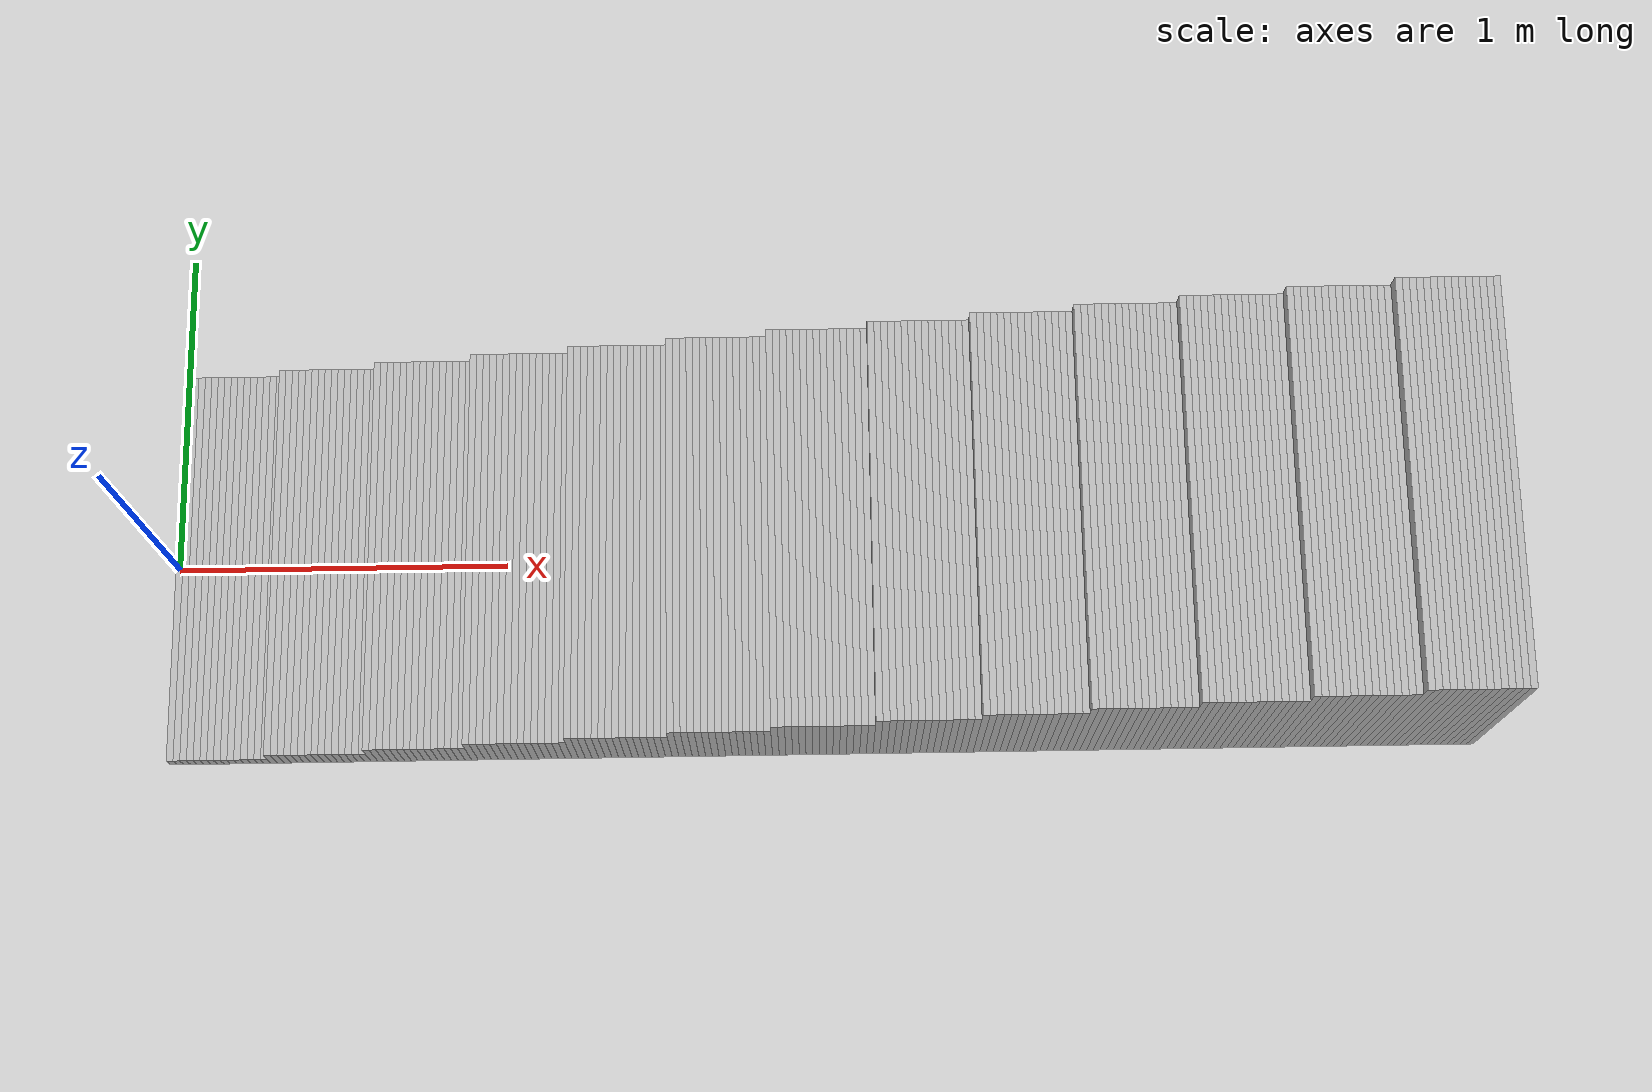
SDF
<?xml version="1.0"?>
<sdf version="1.6">
  <world name="stair_lab">
    <!-- stair_lab_stairs_easy —— 由 stairstudy/fixtures.py 生成（离线候选件，**不被任何在册 launch 引用**）
         场景：踏步深 0.30m 级高 0.06m 共 13 级
         请勿与 worlds/m1_world.world 混用：后者是红线件（各跑 world_before/after.sha 对它取指纹）。 -->
    <include><uri>model://ground_plane</uri></include>
    <include><uri>model://sun</uri></include>
    <model name="stairs_easy">
      <static>1</static>
      <pose>0.000 0.000 0 0 0 0</pose>
        <link name="seg0">
          <pose>0.010 0.000 0.030 0 0 0</pose>
          <collision name="c0"><geometry><box><size>0.02 1.200 0.060</size></box></geometry></collision>
          <visual name="v0"><geometry><box><size>0.02 1.200 0.060</size></box></geometry></visual>
        </link>        <link name="seg1">
          <pose>0.030 0.000 0.030 0 0 0</pose>
          <collision name="c1"><geometry><box><size>0.02 1.200 0.060</size></box></geometry></collision>
          <visual name="v1"><geometry><box><size>0.02 1.200 0.060</size></box></geometry></visual>
        </link>        <link name="seg2">
          <pose>0.050 0.000 0.030 0 0 0</pose>
          <collision name="c2"><geometry><box><size>0.02 1.200 0.060</size></box></geometry></collision>
          <visual name="v2"><geometry><box><size>0.02 1.200 0.060</size></box></geometry></visual>
        </link>        <link name="seg3">
          <pose>0.070 0.000 0.030 0 0 0</pose>
          <collision name="c3"><geometry><box><size>0.02 1.200 0.060</size></box></geometry></collision>
          <visual name="v3"><geometry><box><size>0.02 1.200 0.060</size></box></geometry></visual>
        </link>        <link name="seg4">
          <pose>0.090 0.000 0.030 0 0 0</pose>
          <collision name="c4"><geometry><box><size>0.02 1.200 0.060</size></box></geometry></collision>
          <visual name="v4"><geometry><box><size>0.02 1.200 0.060</size></box></geometry></visual>
        </link>        <link name="seg5">
          <pose>0.110 0.000 0.030 0 0 0</pose>
          <collision name="c5"><geometry><box><size>0.02 1.200 0.060</size></box></geometry></collision>
          <visual name="v5"><geometry><box><size>0.02 1.200 0.060</size></box></geometry></visual>
        </link>        <link name="seg6">
          <pose>0.130 0.000 0.030 0 0 0</pose>
          <collision name="c6"><geometry><box><size>0.02 1.200 0.060</size></box></geometry></collision>
          <visual name="v6"><geometry><box><size>0.02 1.200 0.060</size></box></geometry></visual>
        </link>        <link name="seg7">
          <pose>0.150 0.000 0.030 0 0 0</pose>
          <collision name="c7"><geometry><box><size>0.02 1.200 0.060</size></box></geometry></collision>
          <visual name="v7"><geometry><box><size>0.02 1.200 0.060</size></box></geometry></visual>
        </link>        <link name="seg8">
          <pose>0.170 0.000 0.030 0 0 0</pose>
          <collision name="c8"><geometry><box><size>0.02 1.200 0.060</size></box></geometry></collision>
          <visual name="v8"><geometry><box><size>0.02 1.200 0.060</size></box></geometry></visual>
        </link>        <link name="seg9">
          <pose>0.190 0.000 0.030 0 0 0</pose>
          <collision name="c9"><geometry><box><size>0.02 1.200 0.060</size></box></geometry></collision>
          <visual name="v9"><geometry><box><size>0.02 1.200 0.060</size></box></geometry></visual>
        </link>        <link name="seg10">
          <pose>0.210 0.000 0.030 0 0 0</pose>
          <collision name="c10"><geometry><box><size>0.02 1.200 0.060</size></box></geometry></collision>
          <visual name="v10"><geometry><box><size>0.02 1.200 0.060</size></box></geometry></visual>
        </link>        <link name="seg11">
          <pose>0.230 0.000 0.030 0 0 0</pose>
          <collision name="c11"><geometry><box><size>0.02 1.200 0.060</size></box></geometry></collision>
          <visual name="v11"><geometry><box><size>0.02 1.200 0.060</size></box></geometry></visual>
        </link>        <link name="seg12">
          <pose>0.250 0.000 0.030 0 0 0</pose>
          <collision name="c12"><geometry><box><size>0.02 1.200 0.060</size></box></geometry></collision>
          <visual name="v12"><geometry><box><size>0.02 1.200 0.060</size></box></geometry></visual>
        </link>        <link name="seg13">
          <pose>0.270 0.000 0.030 0 0 0</pose>
          <collision name="c13"><geometry><box><size>0.02 1.200 0.060</size></box></geometry></collision>
          <visual name="v13"><geometry><box><size>0.02 1.200 0.060</size></box></geometry></visual>
        </link>        <link name="seg14">
          <pose>0.290 0.000 0.030 0 0 0</pose>
          <collision name="c14"><geometry><box><size>0.02 1.200 0.060</size></box></geometry></collision>
          <visual name="v14"><geometry><box><size>0.02 1.200 0.060</size></box></geometry></visual>
        </link>        <link name="seg15">
          <pose>0.310 0.000 0.060 0 0 0</pose>
          <collision name="c15"><geometry><box><size>0.02 1.200 0.120</size></box></geometry></collision>
          <visual name="v15"><geometry><box><size>0.02 1.200 0.120</size></box></geometry></visual>
        </link>        <link name="seg16">
          <pose>0.330 0.000 0.060 0 0 0</pose>
          <collision name="c16"><geometry><box><size>0.02 1.200 0.120</size></box></geometry></collision>
          <visual name="v16"><geometry><box><size>0.02 1.200 0.120</size></box></geometry></visual>
        </link>        <link name="seg17">
          <pose>0.350 0.000 0.060 0 0 0</pose>
          <collision name="c17"><geometry><box><size>0.02 1.200 0.120</size></box></geometry></collision>
          <visual name="v17"><geometry><box><size>0.02 1.200 0.120</size></box></geometry></visual>
        </link>        <link name="seg18">
          <pose>0.370 0.000 0.060 0 0 0</pose>
          <collision name="c18"><geometry><box><size>0.02 1.200 0.120</size></box></geometry></collision>
          <visual name="v18"><geometry><box><size>0.02 1.200 0.120</size></box></geometry></visual>
        </link>        <link name="seg19">
          <pose>0.390 0.000 0.060 0 0 0</pose>
          <collision name="c19"><geometry><box><size>0.02 1.200 0.120</size></box></geometry></collision>
          <visual name="v19"><geometry><box><size>0.02 1.200 0.120</size></box></geometry></visual>
        </link>        <link name="seg20">
          <pose>0.410 0.000 0.060 0 0 0</pose>
          <collision name="c20"><geometry><box><size>0.02 1.200 0.120</size></box></geometry></collision>
          <visual name="v20"><geometry><box><size>0.02 1.200 0.120</size></box></geometry></visual>
        </link>        <link name="seg21">
          <pose>0.430 0.000 0.060 0 0 0</pose>
          <collision name="c21"><geometry><box><size>0.02 1.200 0.120</size></box></geometry></collision>
          <visual name="v21"><geometry><box><size>0.02 1.200 0.120</size></box></geometry></visual>
        </link>        <link name="seg22">
          <pose>0.450 0.000 0.060 0 0 0</pose>
          <collision name="c22"><geometry><box><size>0.02 1.200 0.120</size></box></geometry></collision>
          <visual name="v22"><geometry><box><size>0.02 1.200 0.120</size></box></geometry></visual>
        </link>        <link name="seg23">
          <pose>0.470 0.000 0.060 0 0 0</pose>
          <collision name="c23"><geometry><box><size>0.02 1.200 0.120</size></box></geometry></collision>
          <visual name="v23"><geometry><box><size>0.02 1.200 0.120</size></box></geometry></visual>
        </link>        <link name="seg24">
          <pose>0.490 0.000 0.060 0 0 0</pose>
          <collision name="c24"><geometry><box><size>0.02 1.200 0.120</size></box></geometry></collision>
          <visual name="v24"><geometry><box><size>0.02 1.200 0.120</size></box></geometry></visual>
        </link>        <link name="seg25">
          <pose>0.510 0.000 0.060 0 0 0</pose>
          <collision name="c25"><geometry><box><size>0.02 1.200 0.120</size></box></geometry></collision>
          <visual name="v25"><geometry><box><size>0.02 1.200 0.120</size></box></geometry></visual>
        </link>        <link name="seg26">
          <pose>0.530 0.000 0.060 0 0 0</pose>
          <collision name="c26"><geometry><box><size>0.02 1.200 0.120</size></box></geometry></collision>
          <visual name="v26"><geometry><box><size>0.02 1.200 0.120</size></box></geometry></visual>
        </link>        <link name="seg27">
          <pose>0.550 0.000 0.060 0 0 0</pose>
          <collision name="c27"><geometry><box><size>0.02 1.200 0.120</size></box></geometry></collision>
          <visual name="v27"><geometry><box><size>0.02 1.200 0.120</size></box></geometry></visual>
        </link>        <link name="seg28">
          <pose>0.570 0.000 0.060 0 0 0</pose>
          <collision name="c28"><geometry><box><size>0.02 1.200 0.120</size></box></geometry></collision>
          <visual name="v28"><geometry><box><size>0.02 1.200 0.120</size></box></geometry></visual>
        </link>        <link name="seg29">
          <pose>0.590 0.000 0.060 0 0 0</pose>
          <collision name="c29"><geometry><box><size>0.02 1.200 0.120</size></box></geometry></collision>
          <visual name="v29"><geometry><box><size>0.02 1.200 0.120</size></box></geometry></visual>
        </link>        <link name="seg30">
          <pose>0.610 0.000 0.090 0 0 0</pose>
          <collision name="c30"><geometry><box><size>0.02 1.200 0.180</size></box></geometry></collision>
          <visual name="v30"><geometry><box><size>0.02 1.200 0.180</size></box></geometry></visual>
        </link>        <link name="seg31">
          <pose>0.630 0.000 0.090 0 0 0</pose>
          <collision name="c31"><geometry><box><size>0.02 1.200 0.180</size></box></geometry></collision>
          <visual name="v31"><geometry><box><size>0.02 1.200 0.180</size></box></geometry></visual>
        </link>        <link name="seg32">
          <pose>0.650 0.000 0.090 0 0 0</pose>
          <collision name="c32"><geometry><box><size>0.02 1.200 0.180</size></box></geometry></collision>
          <visual name="v32"><geometry><box><size>0.02 1.200 0.180</size></box></geometry></visual>
        </link>        <link name="seg33">
          <pose>0.670 0.000 0.090 0 0 0</pose>
          <collision name="c33"><geometry><box><size>0.02 1.200 0.180</size></box></geometry></collision>
          <visual name="v33"><geometry><box><size>0.02 1.200 0.180</size></box></geometry></visual>
        </link>        <link name="seg34">
          <pose>0.690 0.000 0.090 0 0 0</pose>
          <collision name="c34"><geometry><box><size>0.02 1.200 0.180</size></box></geometry></collision>
          <visual name="v34"><geometry><box><size>0.02 1.200 0.180</size></box></geometry></visual>
        </link>        <link name="seg35">
          <pose>0.710 0.000 0.090 0 0 0</pose>
          <collision name="c35"><geometry><box><size>0.02 1.200 0.180</size></box></geometry></collision>
          <visual name="v35"><geometry><box><size>0.02 1.200 0.180</size></box></geometry></visual>
        </link>        <link name="seg36">
          <pose>0.730 0.000 0.090 0 0 0</pose>
          <collision name="c36"><geometry><box><size>0.02 1.200 0.180</size></box></geometry></collision>
          <visual name="v36"><geometry><box><size>0.02 1.200 0.180</size></box></geometry></visual>
        </link>        <link name="seg37">
          <pose>0.750 0.000 0.090 0 0 0</pose>
          <collision name="c37"><geometry><box><size>0.02 1.200 0.180</size></box></geometry></collision>
          <visual name="v37"><geometry><box><size>0.02 1.200 0.180</size></box></geometry></visual>
        </link>        <link name="seg38">
          <pose>0.770 0.000 0.090 0 0 0</pose>
          <collision name="c38"><geometry><box><size>0.02 1.200 0.180</size></box></geometry></collision>
          <visual name="v38"><geometry><box><size>0.02 1.200 0.180</size></box></geometry></visual>
        </link>        <link name="seg39">
          <pose>0.790 0.000 0.090 0 0 0</pose>
          <collision name="c39"><geometry><box><size>0.02 1.200 0.180</size></box></geometry></collision>
          <visual name="v39"><geometry><box><size>0.02 1.200 0.180</size></box></geometry></visual>
        </link>        <link name="seg40">
          <pose>0.810 0.000 0.090 0 0 0</pose>
          <collision name="c40"><geometry><box><size>0.02 1.200 0.180</size></box></geometry></collision>
          <visual name="v40"><geometry><box><size>0.02 1.200 0.180</size></box></geometry></visual>
        </link>        <link name="seg41">
          <pose>0.830 0.000 0.090 0 0 0</pose>
          <collision name="c41"><geometry><box><size>0.02 1.200 0.180</size></box></geometry></collision>
          <visual name="v41"><geometry><box><size>0.02 1.200 0.180</size></box></geometry></visual>
        </link>        <link name="seg42">
          <pose>0.850 0.000 0.090 0 0 0</pose>
          <collision name="c42"><geometry><box><size>0.02 1.200 0.180</size></box></geometry></collision>
          <visual name="v42"><geometry><box><size>0.02 1.200 0.180</size></box></geometry></visual>
        </link>        <link name="seg43">
          <pose>0.870 0.000 0.090 0 0 0</pose>
          <collision name="c43"><geometry><box><size>0.02 1.200 0.180</size></box></geometry></collision>
          <visual name="v43"><geometry><box><size>0.02 1.200 0.180</size></box></geometry></visual>
        </link>        <link name="seg44">
          <pose>0.890 0.000 0.090 0 0 0</pose>
          <collision name="c44"><geometry><box><size>0.02 1.200 0.180</size></box></geometry></collision>
          <visual name="v44"><geometry><box><size>0.02 1.200 0.180</size></box></geometry></visual>
        </link>        <link name="seg45">
          <pose>0.910 0.000 0.120 0 0 0</pose>
          <collision name="c45"><geometry><box><size>0.02 1.200 0.240</size></box></geometry></collision>
          <visual name="v45"><geometry><box><size>0.02 1.200 0.240</size></box></geometry></visual>
        </link>        <link name="seg46">
          <pose>0.930 0.000 0.120 0 0 0</pose>
          <collision name="c46"><geometry><box><size>0.02 1.200 0.240</size></box></geometry></collision>
          <visual name="v46"><geometry><box><size>0.02 1.200 0.240</size></box></geometry></visual>
        </link>        <link name="seg47">
          <pose>0.950 0.000 0.120 0 0 0</pose>
          <collision name="c47"><geometry><box><size>0.02 1.200 0.240</size></box></geometry></collision>
          <visual name="v47"><geometry><box><size>0.02 1.200 0.240</size></box></geometry></visual>
        </link>        <link name="seg48">
          <pose>0.970 0.000 0.120 0 0 0</pose>
          <collision name="c48"><geometry><box><size>0.02 1.200 0.240</size></box></geometry></collision>
          <visual name="v48"><geometry><box><size>0.02 1.200 0.240</size></box></geometry></visual>
        </link>        <link name="seg49">
          <pose>0.990 0.000 0.120 0 0 0</pose>
          <collision name="c49"><geometry><box><size>0.02 1.200 0.240</size></box></geometry></collision>
          <visual name="v49"><geometry><box><size>0.02 1.200 0.240</size></box></geometry></visual>
        </link>        <link name="seg50">
          <pose>1.010 0.000 0.120 0 0 0</pose>
          <collision name="c50"><geometry><box><size>0.02 1.200 0.240</size></box></geometry></collision>
          <visual name="v50"><geometry><box><size>0.02 1.200 0.240</size></box></geometry></visual>
        </link>        <link name="seg51">
          <pose>1.030 0.000 0.120 0 0 0</pose>
          <collision name="c51"><geometry><box><size>0.02 1.200 0.240</size></box></geometry></collision>
          <visual name="v51"><geometry><box><size>0.02 1.200 0.240</size></box></geometry></visual>
        </link>        <link name="seg52">
          <pose>1.050 0.000 0.120 0 0 0</pose>
          <collision name="c52"><geometry><box><size>0.02 1.200 0.240</size></box></geometry></collision>
          <visual name="v52"><geometry><box><size>0.02 1.200 0.240</size></box></geometry></visual>
        </link>        <link name="seg53">
          <pose>1.070 0.000 0.120 0 0 0</pose>
          <collision name="c53"><geometry><box><size>0.02 1.200 0.240</size></box></geometry></collision>
          <visual name="v53"><geometry><box><size>0.02 1.200 0.240</size></box></geometry></visual>
        </link>        <link name="seg54">
          <pose>1.090 0.000 0.120 0 0 0</pose>
          <collision name="c54"><geometry><box><size>0.02 1.200 0.240</size></box></geometry></collision>
          <visual name="v54"><geometry><box><size>0.02 1.200 0.240</size></box></geometry></visual>
        </link>        <link name="seg55">
          <pose>1.110 0.000 0.120 0 0 0</pose>
          <collision name="c55"><geometry><box><size>0.02 1.200 0.240</size></box></geometry></collision>
          <visual name="v55"><geometry><box><size>0.02 1.200 0.240</size></box></geometry></visual>
        </link>        <link name="seg56">
          <pose>1.130 0.000 0.120 0 0 0</pose>
          <collision name="c56"><geometry><box><size>0.02 1.200 0.240</size></box></geometry></collision>
          <visual name="v56"><geometry><box><size>0.02 1.200 0.240</size></box></geometry></visual>
        </link>        <link name="seg57">
          <pose>1.150 0.000 0.120 0 0 0</pose>
          <collision name="c57"><geometry><box><size>0.02 1.200 0.240</size></box></geometry></collision>
          <visual name="v57"><geometry><box><size>0.02 1.200 0.240</size></box></geometry></visual>
        </link>        <link name="seg58">
          <pose>1.170 0.000 0.120 0 0 0</pose>
          <collision name="c58"><geometry><box><size>0.02 1.200 0.240</size></box></geometry></collision>
          <visual name="v58"><geometry><box><size>0.02 1.200 0.240</size></box></geometry></visual>
        </link>        <link name="seg59">
          <pose>1.190 0.000 0.120 0 0 0</pose>
          <collision name="c59"><geometry><box><size>0.02 1.200 0.240</size></box></geometry></collision>
          <visual name="v59"><geometry><box><size>0.02 1.200 0.240</size></box></geometry></visual>
        </link>        <link name="seg60">
          <pose>1.210 0.000 0.150 0 0 0</pose>
          <collision name="c60"><geometry><box><size>0.02 1.200 0.300</size></box></geometry></collision>
          <visual name="v60"><geometry><box><size>0.02 1.200 0.300</size></box></geometry></visual>
        </link>        <link name="seg61">
          <pose>1.230 0.000 0.150 0 0 0</pose>
          <collision name="c61"><geometry><box><size>0.02 1.200 0.300</size></box></geometry></collision>
          <visual name="v61"><geometry><box><size>0.02 1.200 0.300</size></box></geometry></visual>
        </link>        <link name="seg62">
          <pose>1.250 0.000 0.150 0 0 0</pose>
          <collision name="c62"><geometry><box><size>0.02 1.200 0.300</size></box></geometry></collision>
          <visual name="v62"><geometry><box><size>0.02 1.200 0.300</size></box></geometry></visual>
        </link>        <link name="seg63">
          <pose>1.270 0.000 0.150 0 0 0</pose>
          <collision name="c63"><geometry><box><size>0.02 1.200 0.300</size></box></geometry></collision>
          <visual name="v63"><geometry><box><size>0.02 1.200 0.300</size></box></geometry></visual>
        </link>        <link name="seg64">
          <pose>1.290 0.000 0.150 0 0 0</pose>
          <collision name="c64"><geometry><box><size>0.02 1.200 0.300</size></box></geometry></collision>
          <visual name="v64"><geometry><box><size>0.02 1.200 0.300</size></box></geometry></visual>
        </link>        <link name="seg65">
          <pose>1.310 0.000 0.150 0 0 0</pose>
          <collision name="c65"><geometry><box><size>0.02 1.200 0.300</size></box></geometry></collision>
          <visual name="v65"><geometry><box><size>0.02 1.200 0.300</size></box></geometry></visual>
        </link>        <link name="seg66">
          <pose>1.330 0.000 0.150 0 0 0</pose>
          <collision name="c66"><geometry><box><size>0.02 1.200 0.300</size></box></geometry></collision>
          <visual name="v66"><geometry><box><size>0.02 1.200 0.300</size></box></geometry></visual>
        </link>        <link name="seg67">
          <pose>1.350 0.000 0.150 0 0 0</pose>
          <collision name="c67"><geometry><box><size>0.02 1.200 0.300</size></box></geometry></collision>
          <visual name="v67"><geometry><box><size>0.02 1.200 0.300</size></box></geometry></visual>
        </link>        <link name="seg68">
          <pose>1.370 0.000 0.150 0 0 0</pose>
          <collision name="c68"><geometry><box><size>0.02 1.200 0.300</size></box></geometry></collision>
          <visual name="v68"><geometry><box><size>0.02 1.200 0.300</size></box></geometry></visual>
        </link>        <link name="seg69">
          <pose>1.390 0.000 0.150 0 0 0</pose>
          <collision name="c69"><geometry><box><size>0.02 1.200 0.300</size></box></geometry></collision>
          <visual name="v69"><geometry><box><size>0.02 1.200 0.300</size></box></geometry></visual>
        </link>        <link name="seg70">
          <pose>1.410 0.000 0.150 0 0 0</pose>
          <collision name="c70"><geometry><box><size>0.02 1.200 0.300</size></box></geometry></collision>
          <visual name="v70"><geometry><box><size>0.02 1.200 0.300</size></box></geometry></visual>
        </link>        <link name="seg71">
          <pose>1.430 0.000 0.150 0 0 0</pose>
          <collision name="c71"><geometry><box><size>0.02 1.200 0.300</size></box></geometry></collision>
          <visual name="v71"><geometry><box><size>0.02 1.200 0.300</size></box></geometry></visual>
        </link>        <link name="seg72">
          <pose>1.450 0.000 0.150 0 0 0</pose>
          <collision name="c72"><geometry><box><size>0.02 1.200 0.300</size></box></geometry></collision>
          <visual name="v72"><geometry><box><size>0.02 1.200 0.300</size></box></geometry></visual>
        </link>        <link name="seg73">
          <pose>1.470 0.000 0.150 0 0 0</pose>
          <collision name="c73"><geometry><box><size>0.02 1.200 0.300</size></box></geometry></collision>
          <visual name="v73"><geometry><box><size>0.02 1.200 0.300</size></box></geometry></visual>
        </link>        <link name="seg74">
          <pose>1.490 0.000 0.150 0 0 0</pose>
          <collision name="c74"><geometry><box><size>0.02 1.200 0.300</size></box></geometry></collision>
          <visual name="v74"><geometry><box><size>0.02 1.200 0.300</size></box></geometry></visual>
        </link>        <link name="seg75">
          <pose>1.510 0.000 0.180 0 0 0</pose>
          <collision name="c75"><geometry><box><size>0.02 1.200 0.360</size></box></geometry></collision>
          <visual name="v75"><geometry><box><size>0.02 1.200 0.360</size></box></geometry></visual>
        </link>        <link name="seg76">
          <pose>1.530 0.000 0.180 0 0 0</pose>
          <collision name="c76"><geometry><box><size>0.02 1.200 0.360</size></box></geometry></collision>
          <visual name="v76"><geometry><box><size>0.02 1.200 0.360</size></box></geometry></visual>
        </link>        <link name="seg77">
          <pose>1.550 0.000 0.180 0 0 0</pose>
          <collision name="c77"><geometry><box><size>0.02 1.200 0.360</size></box></geometry></collision>
          <visual name="v77"><geometry><box><size>0.02 1.200 0.360</size></box></geometry></visual>
        </link>        <link name="seg78">
          <pose>1.570 0.000 0.180 0 0 0</pose>
          <collision name="c78"><geometry><box><size>0.02 1.200 0.360</size></box></geometry></collision>
          <visual name="v78"><geometry><box><size>0.02 1.200 0.360</size></box></geometry></visual>
        </link>        <link name="seg79">
          <pose>1.590 0.000 0.180 0 0 0</pose>
          <collision name="c79"><geometry><box><size>0.02 1.200 0.360</size></box></geometry></collision>
          <visual name="v79"><geometry><box><size>0.02 1.200 0.360</size></box></geometry></visual>
        </link>        <link name="seg80">
          <pose>1.610 0.000 0.180 0 0 0</pose>
          <collision name="c80"><geometry><box><size>0.02 1.200 0.360</size></box></geometry></collision>
          <visual name="v80"><geometry><box><size>0.02 1.200 0.360</size></box></geometry></visual>
        </link>        <link name="seg81">
          <pose>1.630 0.000 0.180 0 0 0</pose>
          <collision name="c81"><geometry><box><size>0.02 1.200 0.360</size></box></geometry></collision>
          <visual name="v81"><geometry><box><size>0.02 1.200 0.360</size></box></geometry></visual>
        </link>        <link name="seg82">
          <pose>1.650 0.000 0.180 0 0 0</pose>
          <collision name="c82"><geometry><box><size>0.02 1.200 0.360</size></box></geometry></collision>
          <visual name="v82"><geometry><box><size>0.02 1.200 0.360</size></box></geometry></visual>
        </link>        <link name="seg83">
          <pose>1.670 0.000 0.180 0 0 0</pose>
          <collision name="c83"><geometry><box><size>0.02 1.200 0.360</size></box></geometry></collision>
          <visual name="v83"><geometry><box><size>0.02 1.200 0.360</size></box></geometry></visual>
        </link>        <link name="seg84">
          <pose>1.690 0.000 0.180 0 0 0</pose>
          <collision name="c84"><geometry><box><size>0.02 1.200 0.360</size></box></geometry></collision>
          <visual name="v84"><geometry><box><size>0.02 1.200 0.360</size></box></geometry></visual>
        </link>        <link name="seg85">
          <pose>1.710 0.000 0.180 0 0 0</pose>
          <collision name="c85"><geometry><box><size>0.02 1.200 0.360</size></box></geometry></collision>
          <visual name="v85"><geometry><box><size>0.02 1.200 0.360</size></box></geometry></visual>
        </link>        <link name="seg86">
          <pose>1.730 0.000 0.180 0 0 0</pose>
          <collision name="c86"><geometry><box><size>0.02 1.200 0.360</size></box></geometry></collision>
          <visual name="v86"><geometry><box><size>0.02 1.200 0.360</size></box></geometry></visual>
        </link>        <link name="seg87">
          <pose>1.750 0.000 0.180 0 0 0</pose>
          <collision name="c87"><geometry><box><size>0.02 1.200 0.360</size></box></geometry></collision>
          <visual name="v87"><geometry><box><size>0.02 1.200 0.360</size></box></geometry></visual>
        </link>        <link name="seg88">
          <pose>1.770 0.000 0.180 0 0 0</pose>
          <collision name="c88"><geometry><box><size>0.02 1.200 0.360</size></box></geometry></collision>
          <visual name="v88"><geometry><box><size>0.02 1.200 0.360</size></box></geometry></visual>
        </link>        <link name="seg89">
          <pose>1.790 0.000 0.180 0 0 0</pose>
          <collision name="c89"><geometry><box><size>0.02 1.200 0.360</size></box></geometry></collision>
          <visual name="v89"><geometry><box><size>0.02 1.200 0.360</size></box></geometry></visual>
        </link>        <link name="seg90">
          <pose>1.810 0.000 0.210 0 0 0</pose>
          <collision name="c90"><geometry><box><size>0.02 1.200 0.420</size></box></geometry></collision>
          <visual name="v90"><geometry><box><size>0.02 1.200 0.420</size></box></geometry></visual>
        </link>        <link name="seg91">
          <pose>1.830 0.000 0.210 0 0 0</pose>
          <collision name="c91"><geometry><box><size>0.02 1.200 0.420</size></box></geometry></collision>
          <visual name="v91"><geometry><box><size>0.02 1.200 0.420</size></box></geometry></visual>
        </link>        <link name="seg92">
          <pose>1.850 0.000 0.210 0 0 0</pose>
          <collision name="c92"><geometry><box><size>0.02 1.200 0.420</size></box></geometry></collision>
          <visual name="v92"><geometry><box><size>0.02 1.200 0.420</size></box></geometry></visual>
        </link>        <link name="seg93">
          <pose>1.870 0.000 0.210 0 0 0</pose>
          <collision name="c93"><geometry><box><size>0.02 1.200 0.420</size></box></geometry></collision>
          <visual name="v93"><geometry><box><size>0.02 1.200 0.420</size></box></geometry></visual>
        </link>        <link name="seg94">
          <pose>1.890 0.000 0.210 0 0 0</pose>
          <collision name="c94"><geometry><box><size>0.02 1.200 0.420</size></box></geometry></collision>
          <visual name="v94"><geometry><box><size>0.02 1.200 0.420</size></box></geometry></visual>
        </link>        <link name="seg95">
          <pose>1.910 0.000 0.210 0 0 0</pose>
          <collision name="c95"><geometry><box><size>0.02 1.200 0.420</size></box></geometry></collision>
          <visual name="v95"><geometry><box><size>0.02 1.200 0.420</size></box></geometry></visual>
        </link>        <link name="seg96">
          <pose>1.930 0.000 0.210 0 0 0</pose>
          <collision name="c96"><geometry><box><size>0.02 1.200 0.420</size></box></geometry></collision>
          <visual name="v96"><geometry><box><size>0.02 1.200 0.420</size></box></geometry></visual>
        </link>        <link name="seg97">
          <pose>1.950 0.000 0.210 0 0 0</pose>
          <collision name="c97"><geometry><box><size>0.02 1.200 0.420</size></box></geometry></collision>
          <visual name="v97"><geometry><box><size>0.02 1.200 0.420</size></box></geometry></visual>
        </link>        <link name="seg98">
          <pose>1.970 0.000 0.210 0 0 0</pose>
          <collision name="c98"><geometry><box><size>0.02 1.200 0.420</size></box></geometry></collision>
          <visual name="v98"><geometry><box><size>0.02 1.200 0.420</size></box></geometry></visual>
        </link>        <link name="seg99">
          <pose>1.990 0.000 0.210 0 0 0</pose>
          <collision name="c99"><geometry><box><size>0.02 1.200 0.420</size></box></geometry></collision>
          <visual name="v99"><geometry><box><size>0.02 1.200 0.420</size></box></geometry></visual>
        </link>        <link name="seg100">
          <pose>2.010 0.000 0.210 0 0 0</pose>
          <collision name="c100"><geometry><box><size>0.02 1.200 0.420</size></box></geometry></collision>
          <visual name="v100"><geometry><box><size>0.02 1.200 0.420</size></box></geometry></visual>
        </link>        <link name="seg101">
          <pose>2.030 0.000 0.210 0 0 0</pose>
          <collision name="c101"><geometry><box><size>0.02 1.200 0.420</size></box></geometry></collision>
          <visual name="v101"><geometry><box><size>0.02 1.200 0.420</size></box></geometry></visual>
        </link>        <link name="seg102">
          <pose>2.050 0.000 0.210 0 0 0</pose>
          <collision name="c102"><geometry><box><size>0.02 1.200 0.420</size></box></geometry></collision>
          <visual name="v102"><geometry><box><size>0.02 1.200 0.420</size></box></geometry></visual>
        </link>        <link name="seg103">
          <pose>2.070 0.000 0.210 0 0 0</pose>
          <collision name="c103"><geometry><box><size>0.02 1.200 0.420</size></box></geometry></collision>
          <visual name="v103"><geometry><box><size>0.02 1.200 0.420</size></box></geometry></visual>
        </link>        <link name="seg104">
          <pose>2.090 0.000 0.210 0 0 0</pose>
          <collision name="c104"><geometry><box><size>0.02 1.200 0.420</size></box></geometry></collision>
          <visual name="v104"><geometry><box><size>0.02 1.200 0.420</size></box></geometry></visual>
        </link>        <link name="seg105">
          <pose>2.110 0.000 0.240 0 0 0</pose>
          <collision name="c105"><geometry><box><size>0.02 1.200 0.480</size></box></geometry></collision>
          <visual name="v105"><geometry><box><size>0.02 1.200 0.480</size></box></geometry></visual>
        </link>        <link name="seg106">
          <pose>2.130 0.000 0.240 0 0 0</pose>
          <collision name="c106"><geometry><box><size>0.02 1.200 0.480</size></box></geometry></collision>
          <visual name="v106"><geometry><box><size>0.02 1.200 0.480</size></box></geometry></visual>
        </link>        <link name="seg107">
          <pose>2.150 0.000 0.240 0 0 0</pose>
          <collision name="c107"><geometry><box><size>0.02 1.200 0.480</size></box></geometry></collision>
          <visual name="v107"><geometry><box><size>0.02 1.200 0.480</size></box></geometry></visual>
        </link>        <link name="seg108">
          <pose>2.170 0.000 0.240 0 0 0</pose>
          <collision name="c108"><geometry><box><size>0.02 1.200 0.480</size></box></geometry></collision>
          <visual name="v108"><geometry><box><size>0.02 1.200 0.480</size></box></geometry></visual>
        </link>        <link name="seg109">
          <pose>2.190 0.000 0.240 0 0 0</pose>
          <collision name="c109"><geometry><box><size>0.02 1.200 0.480</size></box></geometry></collision>
          <visual name="v109"><geometry><box><size>0.02 1.200 0.480</size></box></geometry></visual>
        </link>        <link name="seg110">
          <pose>2.210 0.000 0.240 0 0 0</pose>
          <collision name="c110"><geometry><box><size>0.02 1.200 0.480</size></box></geometry></collision>
          <visual name="v110"><geometry><box><size>0.02 1.200 0.480</size></box></geometry></visual>
        </link>        <link name="seg111">
          <pose>2.230 0.000 0.240 0 0 0</pose>
          <collision name="c111"><geometry><box><size>0.02 1.200 0.480</size></box></geometry></collision>
          <visual name="v111"><geometry><box><size>0.02 1.200 0.480</size></box></geometry></visual>
        </link>        <link name="seg112">
          <pose>2.250 0.000 0.240 0 0 0</pose>
          <collision name="c112"><geometry><box><size>0.02 1.200 0.480</size></box></geometry></collision>
          <visual name="v112"><geometry><box><size>0.02 1.200 0.480</size></box></geometry></visual>
        </link>        <link name="seg113">
          <pose>2.270 0.000 0.240 0 0 0</pose>
          <collision name="c113"><geometry><box><size>0.02 1.200 0.480</size></box></geometry></collision>
          <visual name="v113"><geometry><box><size>0.02 1.200 0.480</size></box></geometry></visual>
        </link>        <link name="seg114">
          <pose>2.290 0.000 0.240 0 0 0</pose>
          <collision name="c114"><geometry><box><size>0.02 1.200 0.480</size></box></geometry></collision>
          <visual name="v114"><geometry><box><size>0.02 1.200 0.480</size></box></geometry></visual>
        </link>        <link name="seg115">
          <pose>2.310 0.000 0.240 0 0 0</pose>
          <collision name="c115"><geometry><box><size>0.02 1.200 0.480</size></box></geometry></collision>
          <visual name="v115"><geometry><box><size>0.02 1.200 0.480</size></box></geometry></visual>
        </link>        <link name="seg116">
          <pose>2.330 0.000 0.240 0 0 0</pose>
          <collision name="c116"><geometry><box><size>0.02 1.200 0.480</size></box></geometry></collision>
          <visual name="v116"><geometry><box><size>0.02 1.200 0.480</size></box></geometry></visual>
        </link>        <link name="seg117">
          <pose>2.350 0.000 0.240 0 0 0</pose>
          <collision name="c117"><geometry><box><size>0.02 1.200 0.480</size></box></geometry></collision>
          <visual name="v117"><geometry><box><size>0.02 1.200 0.480</size></box></geometry></visual>
        </link>        <link name="seg118">
          <pose>2.370 0.000 0.240 0 0 0</pose>
          <collision name="c118"><geometry><box><size>0.02 1.200 0.480</size></box></geometry></collision>
          <visual name="v118"><geometry><box><size>0.02 1.200 0.480</size></box></geometry></visual>
        </link>        <link name="seg119">
          <pose>2.390 0.000 0.240 0 0 0</pose>
          <collision name="c119"><geometry><box><size>0.02 1.200 0.480</size></box></geometry></collision>
          <visual name="v119"><geometry><box><size>0.02 1.200 0.480</size></box></geometry></visual>
        </link>        <link name="seg120">
          <pose>2.410 0.000 0.270 0 0 0</pose>
          <collision name="c120"><geometry><box><size>0.02 1.200 0.540</size></box></geometry></collision>
          <visual name="v120"><geometry><box><size>0.02 1.200 0.540</size></box></geometry></visual>
        </link>        <link name="seg121">
          <pose>2.430 0.000 0.270 0 0 0</pose>
          <collision name="c121"><geometry><box><size>0.02 1.200 0.540</size></box></geometry></collision>
          <visual name="v121"><geometry><box><size>0.02 1.200 0.540</size></box></geometry></visual>
        </link>        <link name="seg122">
          <pose>2.450 0.000 0.270 0 0 0</pose>
          <collision name="c122"><geometry><box><size>0.02 1.200 0.540</size></box></geometry></collision>
          <visual name="v122"><geometry><box><size>0.02 1.200 0.540</size></box></geometry></visual>
        </link>        <link name="seg123">
          <pose>2.470 0.000 0.270 0 0 0</pose>
          <collision name="c123"><geometry><box><size>0.02 1.200 0.540</size></box></geometry></collision>
          <visual name="v123"><geometry><box><size>0.02 1.200 0.540</size></box></geometry></visual>
        </link>        <link name="seg124">
          <pose>2.490 0.000 0.270 0 0 0</pose>
          <collision name="c124"><geometry><box><size>0.02 1.200 0.540</size></box></geometry></collision>
          <visual name="v124"><geometry><box><size>0.02 1.200 0.540</size></box></geometry></visual>
        </link>        <link name="seg125">
          <pose>2.510 0.000 0.270 0 0 0</pose>
          <collision name="c125"><geometry><box><size>0.02 1.200 0.540</size></box></geometry></collision>
          <visual name="v125"><geometry><box><size>0.02 1.200 0.540</size></box></geometry></visual>
        </link>        <link name="seg126">
          <pose>2.530 0.000 0.270 0 0 0</pose>
          <collision name="c126"><geometry><box><size>0.02 1.200 0.540</size></box></geometry></collision>
          <visual name="v126"><geometry><box><size>0.02 1.200 0.540</size></box></geometry></visual>
        </link>        <link name="seg127">
          <pose>2.550 0.000 0.270 0 0 0</pose>
          <collision name="c127"><geometry><box><size>0.02 1.200 0.540</size></box></geometry></collision>
          <visual name="v127"><geometry><box><size>0.02 1.200 0.540</size></box></geometry></visual>
        </link>        <link name="seg128">
          <pose>2.570 0.000 0.270 0 0 0</pose>
          <collision name="c128"><geometry><box><size>0.02 1.200 0.540</size></box></geometry></collision>
          <visual name="v128"><geometry><box><size>0.02 1.200 0.540</size></box></geometry></visual>
        </link>        <link name="seg129">
          <pose>2.590 0.000 0.270 0 0 0</pose>
          <collision name="c129"><geometry><box><size>0.02 1.200 0.540</size></box></geometry></collision>
          <visual name="v129"><geometry><box><size>0.02 1.200 0.540</size></box></geometry></visual>
        </link>        <link name="seg130">
          <pose>2.610 0.000 0.270 0 0 0</pose>
          <collision name="c130"><geometry><box><size>0.02 1.200 0.540</size></box></geometry></collision>
          <visual name="v130"><geometry><box><size>0.02 1.200 0.540</size></box></geometry></visual>
        </link>        <link name="seg131">
          <pose>2.630 0.000 0.270 0 0 0</pose>
          <collision name="c131"><geometry><box><size>0.02 1.200 0.540</size></box></geometry></collision>
          <visual name="v131"><geometry><box><size>0.02 1.200 0.540</size></box></geometry></visual>
        </link>        <link name="seg132">
          <pose>2.650 0.000 0.270 0 0 0</pose>
          <collision name="c132"><geometry><box><size>0.02 1.200 0.540</size></box></geometry></collision>
          <visual name="v132"><geometry><box><size>0.02 1.200 0.540</size></box></geometry></visual>
        </link>        <link name="seg133">
          <pose>2.670 0.000 0.270 0 0 0</pose>
          <collision name="c133"><geometry><box><size>0.02 1.200 0.540</size></box></geometry></collision>
          <visual name="v133"><geometry><box><size>0.02 1.200 0.540</size></box></geometry></visual>
        </link>        <link name="seg134">
          <pose>2.690 0.000 0.270 0 0 0</pose>
          <collision name="c134"><geometry><box><size>0.02 1.200 0.540</size></box></geometry></collision>
          <visual name="v134"><geometry><box><size>0.02 1.200 0.540</size></box></geometry></visual>
        </link>        <link name="seg135">
          <pose>2.710 0.000 0.300 0 0 0</pose>
          <collision name="c135"><geometry><box><size>0.02 1.200 0.600</size></box></geometry></collision>
          <visual name="v135"><geometry><box><size>0.02 1.200 0.600</size></box></geometry></visual>
        </link>        <link name="seg136">
          <pose>2.730 0.000 0.300 0 0 0</pose>
          <collision name="c136"><geometry><box><size>0.02 1.200 0.600</size></box></geometry></collision>
          <visual name="v136"><geometry><box><size>0.02 1.200 0.600</size></box></geometry></visual>
        </link>        <link name="seg137">
          <pose>2.750 0.000 0.300 0 0 0</pose>
          <collision name="c137"><geometry><box><size>0.02 1.200 0.600</size></box></geometry></collision>
          <visual name="v137"><geometry><box><size>0.02 1.200 0.600</size></box></geometry></visual>
        </link>        <link name="seg138">
          <pose>2.770 0.000 0.300 0 0 0</pose>
          <collision name="c138"><geometry><box><size>0.02 1.200 0.600</size></box></geometry></collision>
          <visual name="v138"><geometry><box><size>0.02 1.200 0.600</size></box></geometry></visual>
        </link>        <link name="seg139">
          <pose>2.790 0.000 0.300 0 0 0</pose>
          <collision name="c139"><geometry><box><size>0.02 1.200 0.600</size></box></geometry></collision>
          <visual name="v139"><geometry><box><size>0.02 1.200 0.600</size></box></geometry></visual>
        </link>        <link name="seg140">
          <pose>2.810 0.000 0.300 0 0 0</pose>
          <collision name="c140"><geometry><box><size>0.02 1.200 0.600</size></box></geometry></collision>
          <visual name="v140"><geometry><box><size>0.02 1.200 0.600</size></box></geometry></visual>
        </link>        <link name="seg141">
          <pose>2.830 0.000 0.300 0 0 0</pose>
          <collision name="c141"><geometry><box><size>0.02 1.200 0.600</size></box></geometry></collision>
          <visual name="v141"><geometry><box><size>0.02 1.200 0.600</size></box></geometry></visual>
        </link>        <link name="seg142">
          <pose>2.850 0.000 0.300 0 0 0</pose>
          <collision name="c142"><geometry><box><size>0.02 1.200 0.600</size></box></geometry></collision>
          <visual name="v142"><geometry><box><size>0.02 1.200 0.600</size></box></geometry></visual>
        </link>        <link name="seg143">
          <pose>2.870 0.000 0.300 0 0 0</pose>
          <collision name="c143"><geometry><box><size>0.02 1.200 0.600</size></box></geometry></collision>
          <visual name="v143"><geometry><box><size>0.02 1.200 0.600</size></box></geometry></visual>
        </link>        <link name="seg144">
          <pose>2.890 0.000 0.300 0 0 0</pose>
          <collision name="c144"><geometry><box><size>0.02 1.200 0.600</size></box></geometry></collision>
          <visual name="v144"><geometry><box><size>0.02 1.200 0.600</size></box></geometry></visual>
        </link>        <link name="seg145">
          <pose>2.910 0.000 0.300 0 0 0</pose>
          <collision name="c145"><geometry><box><size>0.02 1.200 0.600</size></box></geometry></collision>
          <visual name="v145"><geometry><box><size>0.02 1.200 0.600</size></box></geometry></visual>
        </link>        <link name="seg146">
          <pose>2.930 0.000 0.300 0 0 0</pose>
          <collision name="c146"><geometry><box><size>0.02 1.200 0.600</size></box></geometry></collision>
          <visual name="v146"><geometry><box><size>0.02 1.200 0.600</size></box></geometry></visual>
        </link>        <link name="seg147">
          <pose>2.950 0.000 0.300 0 0 0</pose>
          <collision name="c147"><geometry><box><size>0.02 1.200 0.600</size></box></geometry></collision>
          <visual name="v147"><geometry><box><size>0.02 1.200 0.600</size></box></geometry></visual>
        </link>        <link name="seg148">
          <pose>2.970 0.000 0.300 0 0 0</pose>
          <collision name="c148"><geometry><box><size>0.02 1.200 0.600</size></box></geometry></collision>
          <visual name="v148"><geometry><box><size>0.02 1.200 0.600</size></box></geometry></visual>
        </link>        <link name="seg149">
          <pose>2.990 0.000 0.300 0 0 0</pose>
          <collision name="c149"><geometry><box><size>0.02 1.200 0.600</size></box></geometry></collision>
          <visual name="v149"><geometry><box><size>0.02 1.200 0.600</size></box></geometry></visual>
        </link>        <link name="seg150">
          <pose>3.010 0.000 0.330 0 0 0</pose>
          <collision name="c150"><geometry><box><size>0.02 1.200 0.660</size></box></geometry></collision>
          <visual name="v150"><geometry><box><size>0.02 1.200 0.660</size></box></geometry></visual>
        </link>        <link name="seg151">
          <pose>3.030 0.000 0.330 0 0 0</pose>
          <collision name="c151"><geometry><box><size>0.02 1.200 0.660</size></box></geometry></collision>
          <visual name="v151"><geometry><box><size>0.02 1.200 0.660</size></box></geometry></visual>
        </link>        <link name="seg152">
          <pose>3.050 0.000 0.330 0 0 0</pose>
          <collision name="c152"><geometry><box><size>0.02 1.200 0.660</size></box></geometry></collision>
          <visual name="v152"><geometry><box><size>0.02 1.200 0.660</size></box></geometry></visual>
        </link>        <link name="seg153">
          <pose>3.070 0.000 0.330 0 0 0</pose>
          <collision name="c153"><geometry><box><size>0.02 1.200 0.660</size></box></geometry></collision>
          <visual name="v153"><geometry><box><size>0.02 1.200 0.660</size></box></geometry></visual>
        </link>        <link name="seg154">
          <pose>3.090 0.000 0.330 0 0 0</pose>
          <collision name="c154"><geometry><box><size>0.02 1.200 0.660</size></box></geometry></collision>
          <visual name="v154"><geometry><box><size>0.02 1.200 0.660</size></box></geometry></visual>
        </link>        <link name="seg155">
          <pose>3.110 0.000 0.330 0 0 0</pose>
          <collision name="c155"><geometry><box><size>0.02 1.200 0.660</size></box></geometry></collision>
          <visual name="v155"><geometry><box><size>0.02 1.200 0.660</size></box></geometry></visual>
        </link>        <link name="seg156">
          <pose>3.130 0.000 0.330 0 0 0</pose>
          <collision name="c156"><geometry><box><size>0.02 1.200 0.660</size></box></geometry></collision>
          <visual name="v156"><geometry><box><size>0.02 1.200 0.660</size></box></geometry></visual>
        </link>        <link name="seg157">
          <pose>3.150 0.000 0.330 0 0 0</pose>
          <collision name="c157"><geometry><box><size>0.02 1.200 0.660</size></box></geometry></collision>
          <visual name="v157"><geometry><box><size>0.02 1.200 0.660</size></box></geometry></visual>
        </link>        <link name="seg158">
          <pose>3.170 0.000 0.330 0 0 0</pose>
          <collision name="c158"><geometry><box><size>0.02 1.200 0.660</size></box></geometry></collision>
          <visual name="v158"><geometry><box><size>0.02 1.200 0.660</size></box></geometry></visual>
        </link>        <link name="seg159">
          <pose>3.190 0.000 0.330 0 0 0</pose>
          <collision name="c159"><geometry><box><size>0.02 1.200 0.660</size></box></geometry></collision>
          <visual name="v159"><geometry><box><size>0.02 1.200 0.660</size></box></geometry></visual>
        </link>        <link name="seg160">
          <pose>3.210 0.000 0.330 0 0 0</pose>
          <collision name="c160"><geometry><box><size>0.02 1.200 0.660</size></box></geometry></collision>
          <visual name="v160"><geometry><box><size>0.02 1.200 0.660</size></box></geometry></visual>
        </link>        <link name="seg161">
          <pose>3.230 0.000 0.330 0 0 0</pose>
          <collision name="c161"><geometry><box><size>0.02 1.200 0.660</size></box></geometry></collision>
          <visual name="v161"><geometry><box><size>0.02 1.200 0.660</size></box></geometry></visual>
        </link>        <link name="seg162">
          <pose>3.250 0.000 0.330 0 0 0</pose>
          <collision name="c162"><geometry><box><size>0.02 1.200 0.660</size></box></geometry></collision>
          <visual name="v162"><geometry><box><size>0.02 1.200 0.660</size></box></geometry></visual>
        </link>        <link name="seg163">
          <pose>3.270 0.000 0.330 0 0 0</pose>
          <collision name="c163"><geometry><box><size>0.02 1.200 0.660</size></box></geometry></collision>
          <visual name="v163"><geometry><box><size>0.02 1.200 0.660</size></box></geometry></visual>
        </link>        <link name="seg164">
          <pose>3.290 0.000 0.330 0 0 0</pose>
          <collision name="c164"><geometry><box><size>0.02 1.200 0.660</size></box></geometry></collision>
          <visual name="v164"><geometry><box><size>0.02 1.200 0.660</size></box></geometry></visual>
        </link>        <link name="seg165">
          <pose>3.310 0.000 0.360 0 0 0</pose>
          <collision name="c165"><geometry><box><size>0.02 1.200 0.720</size></box></geometry></collision>
          <visual name="v165"><geometry><box><size>0.02 1.200 0.720</size></box></geometry></visual>
        </link>        <link name="seg166">
          <pose>3.330 0.000 0.360 0 0 0</pose>
          <collision name="c166"><geometry><box><size>0.02 1.200 0.720</size></box></geometry></collision>
          <visual name="v166"><geometry><box><size>0.02 1.200 0.720</size></box></geometry></visual>
        </link>        <link name="seg167">
          <pose>3.350 0.000 0.360 0 0 0</pose>
          <collision name="c167"><geometry><box><size>0.02 1.200 0.720</size></box></geometry></collision>
          <visual name="v167"><geometry><box><size>0.02 1.200 0.720</size></box></geometry></visual>
        </link>        <link name="seg168">
          <pose>3.370 0.000 0.360 0 0 0</pose>
          <collision name="c168"><geometry><box><size>0.02 1.200 0.720</size></box></geometry></collision>
          <visual name="v168"><geometry><box><size>0.02 1.200 0.720</size></box></geometry></visual>
        </link>        <link name="seg169">
          <pose>3.390 0.000 0.360 0 0 0</pose>
          <collision name="c169"><geometry><box><size>0.02 1.200 0.720</size></box></geometry></collision>
          <visual name="v169"><geometry><box><size>0.02 1.200 0.720</size></box></geometry></visual>
        </link>        <link name="seg170">
          <pose>3.410 0.000 0.360 0 0 0</pose>
          <collision name="c170"><geometry><box><size>0.02 1.200 0.720</size></box></geometry></collision>
          <visual name="v170"><geometry><box><size>0.02 1.200 0.720</size></box></geometry></visual>
        </link>        <link name="seg171">
          <pose>3.430 0.000 0.360 0 0 0</pose>
          <collision name="c171"><geometry><box><size>0.02 1.200 0.720</size></box></geometry></collision>
          <visual name="v171"><geometry><box><size>0.02 1.200 0.720</size></box></geometry></visual>
        </link>        <link name="seg172">
          <pose>3.450 0.000 0.360 0 0 0</pose>
          <collision name="c172"><geometry><box><size>0.02 1.200 0.720</size></box></geometry></collision>
          <visual name="v172"><geometry><box><size>0.02 1.200 0.720</size></box></geometry></visual>
        </link>        <link name="seg173">
          <pose>3.470 0.000 0.360 0 0 0</pose>
          <collision name="c173"><geometry><box><size>0.02 1.200 0.720</size></box></geometry></collision>
          <visual name="v173"><geometry><box><size>0.02 1.200 0.720</size></box></geometry></visual>
        </link>        <link name="seg174">
          <pose>3.490 0.000 0.360 0 0 0</pose>
          <collision name="c174"><geometry><box><size>0.02 1.200 0.720</size></box></geometry></collision>
          <visual name="v174"><geometry><box><size>0.02 1.200 0.720</size></box></geometry></visual>
        </link>        <link name="seg175">
          <pose>3.510 0.000 0.360 0 0 0</pose>
          <collision name="c175"><geometry><box><size>0.02 1.200 0.720</size></box></geometry></collision>
          <visual name="v175"><geometry><box><size>0.02 1.200 0.720</size></box></geometry></visual>
        </link>        <link name="seg176">
          <pose>3.530 0.000 0.360 0 0 0</pose>
          <collision name="c176"><geometry><box><size>0.02 1.200 0.720</size></box></geometry></collision>
          <visual name="v176"><geometry><box><size>0.02 1.200 0.720</size></box></geometry></visual>
        </link>        <link name="seg177">
          <pose>3.550 0.000 0.360 0 0 0</pose>
          <collision name="c177"><geometry><box><size>0.02 1.200 0.720</size></box></geometry></collision>
          <visual name="v177"><geometry><box><size>0.02 1.200 0.720</size></box></geometry></visual>
        </link>        <link name="seg178">
          <pose>3.570 0.000 0.360 0 0 0</pose>
          <collision name="c178"><geometry><box><size>0.02 1.200 0.720</size></box></geometry></collision>
          <visual name="v178"><geometry><box><size>0.02 1.200 0.720</size></box></geometry></visual>
        </link>        <link name="seg179">
          <pose>3.590 0.000 0.360 0 0 0</pose>
          <collision name="c179"><geometry><box><size>0.02 1.200 0.720</size></box></geometry></collision>
          <visual name="v179"><geometry><box><size>0.02 1.200 0.720</size></box></geometry></visual>
        </link>        <link name="seg180">
          <pose>3.610 0.000 0.390 0 0 0</pose>
          <collision name="c180"><geometry><box><size>0.02 1.200 0.780</size></box></geometry></collision>
          <visual name="v180"><geometry><box><size>0.02 1.200 0.780</size></box></geometry></visual>
        </link>        <link name="seg181">
          <pose>3.630 0.000 0.390 0 0 0</pose>
          <collision name="c181"><geometry><box><size>0.02 1.200 0.780</size></box></geometry></collision>
          <visual name="v181"><geometry><box><size>0.02 1.200 0.780</size></box></geometry></visual>
        </link>        <link name="seg182">
          <pose>3.650 0.000 0.390 0 0 0</pose>
          <collision name="c182"><geometry><box><size>0.02 1.200 0.780</size></box></geometry></collision>
          <visual name="v182"><geometry><box><size>0.02 1.200 0.780</size></box></geometry></visual>
        </link>        <link name="seg183">
          <pose>3.670 0.000 0.390 0 0 0</pose>
          <collision name="c183"><geometry><box><size>0.02 1.200 0.780</size></box></geometry></collision>
          <visual name="v183"><geometry><box><size>0.02 1.200 0.780</size></box></geometry></visual>
        </link>        <link name="seg184">
          <pose>3.690 0.000 0.390 0 0 0</pose>
          <collision name="c184"><geometry><box><size>0.02 1.200 0.780</size></box></geometry></collision>
          <visual name="v184"><geometry><box><size>0.02 1.200 0.780</size></box></geometry></visual>
        </link>        <link name="seg185">
          <pose>3.710 0.000 0.390 0 0 0</pose>
          <collision name="c185"><geometry><box><size>0.02 1.200 0.780</size></box></geometry></collision>
          <visual name="v185"><geometry><box><size>0.02 1.200 0.780</size></box></geometry></visual>
        </link>        <link name="seg186">
          <pose>3.730 0.000 0.390 0 0 0</pose>
          <collision name="c186"><geometry><box><size>0.02 1.200 0.780</size></box></geometry></collision>
          <visual name="v186"><geometry><box><size>0.02 1.200 0.780</size></box></geometry></visual>
        </link>        <link name="seg187">
          <pose>3.750 0.000 0.390 0 0 0</pose>
          <collision name="c187"><geometry><box><size>0.02 1.200 0.780</size></box></geometry></collision>
          <visual name="v187"><geometry><box><size>0.02 1.200 0.780</size></box></geometry></visual>
        </link>        <link name="seg188">
          <pose>3.770 0.000 0.390 0 0 0</pose>
          <collision name="c188"><geometry><box><size>0.02 1.200 0.780</size></box></geometry></collision>
          <visual name="v188"><geometry><box><size>0.02 1.200 0.780</size></box></geometry></visual>
        </link>        <link name="seg189">
          <pose>3.790 0.000 0.390 0 0 0</pose>
          <collision name="c189"><geometry><box><size>0.02 1.200 0.780</size></box></geometry></collision>
          <visual name="v189"><geometry><box><size>0.02 1.200 0.780</size></box></geometry></visual>
        </link>        <link name="seg190">
          <pose>3.810 0.000 0.390 0 0 0</pose>
          <collision name="c190"><geometry><box><size>0.02 1.200 0.780</size></box></geometry></collision>
          <visual name="v190"><geometry><box><size>0.02 1.200 0.780</size></box></geometry></visual>
        </link>        <link name="seg191">
          <pose>3.830 0.000 0.390 0 0 0</pose>
          <collision name="c191"><geometry><box><size>0.02 1.200 0.780</size></box></geometry></collision>
          <visual name="v191"><geometry><box><size>0.02 1.200 0.780</size></box></geometry></visual>
        </link>        <link name="seg192">
          <pose>3.850 0.000 0.390 0 0 0</pose>
          <collision name="c192"><geometry><box><size>0.02 1.200 0.780</size></box></geometry></collision>
          <visual name="v192"><geometry><box><size>0.02 1.200 0.780</size></box></geometry></visual>
        </link>        <link name="seg193">
          <pose>3.870 0.000 0.390 0 0 0</pose>
          <collision name="c193"><geometry><box><size>0.02 1.200 0.780</size></box></geometry></collision>
          <visual name="v193"><geometry><box><size>0.02 1.200 0.780</size></box></geometry></visual>
        </link>        <link name="seg194">
          <pose>3.890 0.000 0.390 0 0 0</pose>
          <collision name="c194"><geometry><box><size>0.02 1.200 0.780</size></box></geometry></collision>
          <visual name="v194"><geometry><box><size>0.02 1.200 0.780</size></box></geometry></visual>
        </link>
    </model>

  </world>
</sdf>
